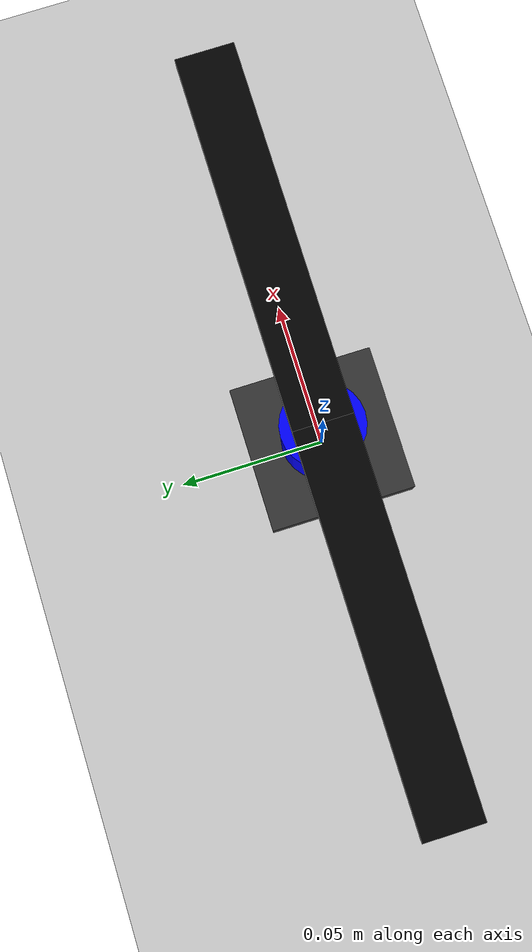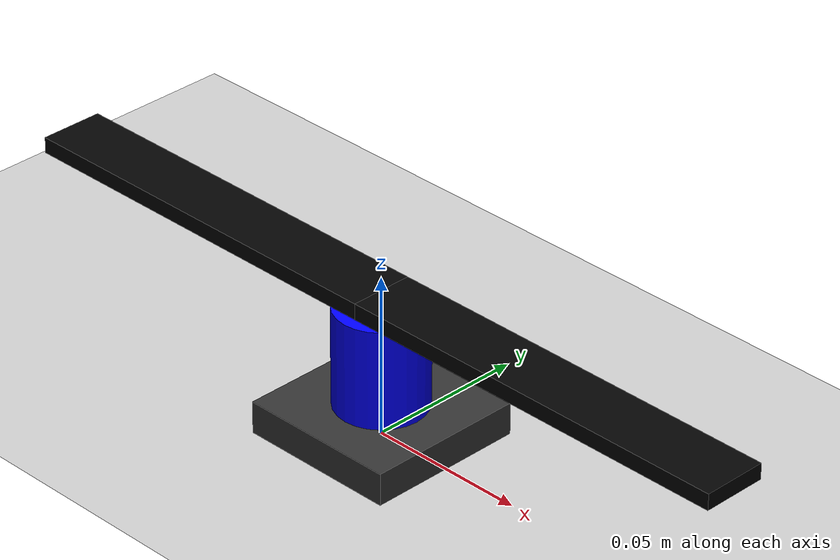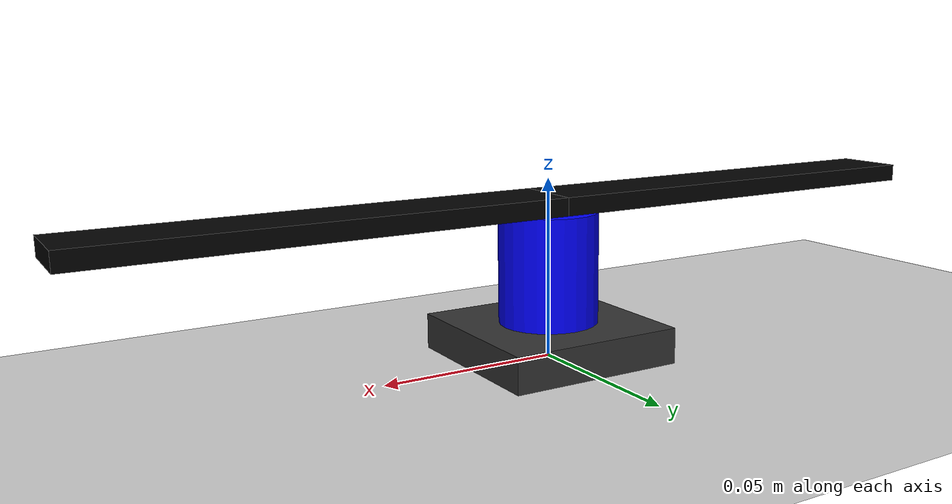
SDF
<?xml version="1.0" ?>
<sdf version="1.10">
  <world name="motor">
    <physics name="1ms" type="ignore">
      <max_step_size>0.001</max_step_size>
      <real_time_factor>1.0</real_time_factor>
    </physics>

    <plugin filename="gz-sim-physics-system"
      name="gz::sim::systems::Physics">
    </plugin>
    <plugin
      filename="gz-sim-sensors-system"
      name="gz::sim::systems::Sensors">
      <render_engine>ogre2</render_engine>
    </plugin>
    <plugin filename="gz-sim-user-commands-system"
      name="gz::sim::systems::UserCommands">
    </plugin>
    <plugin filename="gz-sim-scene-broadcaster-system"
      name="gz::sim::systems::SceneBroadcaster">
    </plugin>
    <plugin filename="gz-sim-imu-system"
      name="gz::sim::systems::Imu">
    </plugin>
    <plugin filename="gz-sim-navsat-system"
      name="gz::sim::systems::NavSat">
    </plugin>
    <plugin name="gz::sim::systems::ForceTorque"
      filename="gz-sim-forcetorque-system">
    </plugin>

    <scene>
      <ambient>1.0 1.0 1.0</ambient>
      <background>0.8 0.8 0.8</background>
      <sky></sky>
    </scene>

    <spherical_coordinates>
      <latitude_deg>-35.363262</latitude_deg>
      <longitude_deg>149.165237</longitude_deg>
      <elevation>584</elevation>
      <heading_deg>0</heading_deg>
      <surface_model>EARTH_WGS84</surface_model>
    </spherical_coordinates>

    <light type="directional" name="sun">
      <cast_shadows>true</cast_shadows>
      <pose>0 0 10 0 0 0</pose>
      <diffuse>0.8 0.8 0.8 1</diffuse>
      <specular>0.8 0.8 0.8 1</specular>
      <attenuation>
        <range>1000</range>
        <constant>0.9</constant>
        <linear>0.01</linear>
        <quadratic>0.001</quadratic>
      </attenuation>
      <direction>-0.5 0.1 -0.9</direction>
    </light>

    <model name="ground_plane">
      <static>true</static>
      <link name="link">
        <collision name="collision">
          <geometry>
            <plane>
              <normal>0 0 1</normal>
              <size>100 100</size>
            </plane>
          </geometry>
          <surface>
            <friction>
              <ode>
                <mu>1000</mu>
                <mu2>1000</mu2>
              </ode>
            </friction>
          </surface>
        </collision>
        <visual name="visual">
          <geometry>
            <plane>
              <normal>0 0 1</normal>
              <size>100 100</size>
            </plane>
          </geometry>
          <material>
            <ambient>0.8 0.8 0.8</ambient>
            <diffuse>0.8 0.8 0.8</diffuse>
            <specular>0.8 0.8 0.8</specular>
          </material>
        </visual>
      </link>
    </model>

    <model name="motor">
      <pose degrees="true">0 0 0.005 0 0 0</pose>
      <link name="base_link">
        <inertial>
          <mass>10.0</mass>
          <inertia>
            <ixx>0.002166667</ixx>
            <ixy>0</ixy>
            <ixz>0</ixz>
            <iyy>0.002166667</iyy>
            <iyz>0</iyz>
            <izz>0.004166667</izz>
          </inertia>
        </inertial>
        <collision name="collision">
          <geometry>
            <box>
              <size>0.05 0.05 0.01</size>
            </box>
          </geometry>
          <surface>
            <friction>
              <ode>
                <mu>1000</mu>
                <mu2>1000</mu2>
              </ode>
            </friction>
          </surface>
        </collision>
        <visual name="visual">
          <geometry>
            <box>
              <size>0.05 0.05 0.01</size>
            </box>
          </geometry>
          <material>
            <ambient>0.2 0.2 0.2</ambient>
            <diffuse>0.2 0.2 0.2</diffuse>
            <specular>0.01 0.01 0.01</specular>
          </material>
        </visual>
      </link>

      <link name="motor_link">
        <pose relative_to="base_link" degrees="true">0 0 0.0205 0 0 0</pose>
        <inertial>
          <mass>0.064</mass>
          <inertia>
            <ixx>8.19449E-06</ixx>
            <ixy>0</ixy>
            <ixz>0</ixz>
            <iyy>8.19449E-06</iyy>
            <iyz>0</iyz>
            <izz>6.13832E-06</izz>
          </inertia>
        </inertial>
        <collision name="collision">
          <geometry>
            <cylinder>
              <length>0.031</length>
              <radius>0.01385</radius>
            </cylinder>
          </geometry>
        </collision>
        <visual name="visual">
          <geometry>
            <cylinder>
              <length>0.031</length>
              <radius>0.01385</radius>
            </cylinder>
          </geometry>
          <material>
            <ambient>0 0 1</ambient>
            <diffuse>0 0 1</diffuse>
            <specular>0.01 0.01 0.01</specular>
          </material>
        </visual>
      </link>
      <joint name="motor_joint" type="revolute">
        <pose degrees="true">0 0 0 0 0 0</pose>
        <parent>base_link</parent>
        <child>motor_link</child>
        <axis>
          <xyz>0 0 1</xyz>
          <limit>
            <lower>-1.0e16</lower>
            <upper>1.0e16</upper>
          </limit>
          <dynamics>
            <!-- damping multiplies angular velocity by (1 - damping) each step -->
            <damping>1.0e-5</damping>

            <!-- friction multiply  -->
          </dynamics>
        </axis>
        <sensor name="force_torque" type="force_torque">
          <update_rate>1000</update_rate>
          <frame>parent</frame>
          <measure_direction>child_to_parent</measure_direction>
        </sensor>
      </joint>

      <link name="blade_1_link">
        <pose relative_to="motor_link" degrees="true">0.0635 0 0.018 0 0 0</pose>
        <inertial>
          <mass>0.0065</mass>
          <inertia>
            <ixx>2.30208E-07</ixx>
            <ixy>0</ixy>
            <ixz>0</ixz>
            <iyy>8.75008E-06</iyy>
            <iyz>0</iyz>
            <izz>8.95321E-06</izz>
          </inertia>
        </inertial>
        <collision name="collision">
          <geometry>
            <box>
              <size>0.127 0.02 0.005</size>
            </box>
          </geometry>
        </collision>
        <visual name="visual">
          <geometry>
            <box>
              <size>0.127 0.02 0.005</size>
            </box>
          </geometry>
          <material>
            <ambient>0.01 0.01 0.01</ambient>
            <diffuse>0.01 0.01 0.01</diffuse>
            <specular>0.01 0.01 0.01</specular>
          </material>
        </visual>
      </link>
      <joint name="blade_1_joint" type="revolute">
        <pose degrees="true">0 0 0 0 0 0</pose>
        <parent>motor_link</parent>
        <child>blade_1_link</child>
        <axis>
          <xyz>1 0 0</xyz>
          <limit>
            <lower>0.17453293</lower>
            <upper>0.17453293</upper>
          </limit>
          <dynamics>
            <damping>0.1</damping>
          </dynamics>
        </axis>
      </joint>

      <link name="blade_2_link">
        <pose relative_to="motor_link" degrees="true">-0.0635 0 0.018 0 0 180</pose>
        <inertial>
          <mass>0.0065</mass>
          <inertia>
            <ixx>2.30208E-07</ixx>
            <ixy>0</ixy>
            <ixz>0</ixz>
            <iyy>8.75008E-06</iyy>
            <iyz>0</iyz>
            <izz>8.95321E-06</izz>
          </inertia>
        </inertial>
        <collision name="collision">
          <geometry>
            <box>
              <size>0.127 0.02 0.005</size>
            </box>
          </geometry>
        </collision>
        <visual name="visual">
          <geometry>
            <box>
              <size>0.127 0.02 0.005</size>
            </box>
          </geometry>
          <material>
            <ambient>0.01 0.01 0.01</ambient>
            <diffuse>0.01 0.01 0.01</diffuse>
            <specular>0.01 0.01 0.01</specular>
          </material>
        </visual>
      </link>
      <joint name="blade_2_joint" type="revolute">
        <pose degrees="true">0 0 0 0 0 0</pose>
        <parent>motor_link</parent>
        <child>blade_2_link</child>
        <axis>
          <xyz>1 0 0</xyz>
          <limit>
            <lower>0.17453293</lower>
            <upper>0.17453293</upper>
          </limit>
          <dynamics>
            <damping>0.1</damping>
          </dynamics>
        </axis>
      </joint>

      <plugin name="gz::sim::systems::JointStatePublisher"
          filename="gz-sim-joint-state-publisher-system">
      </plugin>

      <!--
        T-Motor 2216 920KV as used on a Hexsoon 450
        KV 920 RPM/V = KV 96 rad/s/V
      -->
      <plugin name="MotorPlugin" filename="MotorPlugin">
        <joint_name>motor_joint</joint_name>
        <use_actuator_msg>0</use_actuator_msg>
        <disable_braking>0</disable_braking>
        <topic>/motor_joint/cmd_vel</topic>
        <p_gain>0.01</p_gain>
        <i_gain>0.01</i_gain>
        <d_gain>0</d_gain>
        <i_max>1</i_max>
        <i_min>-1</i_min>
        <cmd_max>5.0</cmd_max>
        <cmd_min>-5.0</cmd_min>
        <voltage_bat>16.0</voltage_bat>
        <speed_constant>96</speed_constant>
        <torque_constant>53</torque_constant>
        <resistance>0.115</resistance>
        <no_load_current>0.8</no_load_current>
      </plugin>

    <!-- lift-drag for ccw prop  NACA 6412 Re 200000-->
    <plugin filename="gz-sim-lift-drag-system"
        name="gz::sim::systems::LiftDrag">
      <a0>0.1000</a0>
      <cla>6.2000</cla>
      <cda>0.0800</cda>
      <cma>0.0000</cma>
      <alpha_stall>0.1710</alpha_stall>
      <cla_stall>-3.0000</cla_stall>
      <cda_stall>0.8000</cda_stall>
      <cma_stall>0.0000</cma_stall>
      <area>0.0013</area>
      <air_density>1.2041</air_density>
      <cp>0.02 0 0</cp>
      <forward>0 1 0</forward>
      <upward>0 0 1</upward>
      <link_name>blade_1_link</link_name>
      <visualize_forces>
        <visualize>1</visualize>
        <update_rate>1000</update_rate>
        <topic>/model/motor/link/blade_1_link/forces/lift_drag</topic>
      </visualize_forces>
    </plugin>
    <plugin filename="gz-sim-lift-drag-system"
        name="gz::sim::systems::LiftDrag">
      <a0>0.1000</a0>
      <cla>6.2000</cla>
      <cda>0.0800</cda>
      <cma>0.0000</cma>
      <alpha_stall>0.1710</alpha_stall>
      <cla_stall>-3.0000</cla_stall>
      <cda_stall>0.8000</cda_stall>
      <cma_stall>0.0000</cma_stall>
      <area>0.0013</area>
      <air_density>1.2041</air_density>
      <cp>0.02 0 0</cp>
      <forward>0 1 0</forward>
      <upward>0 0 1</upward>
      <link_name>blade_2_link</link_name>
      <visualize_forces>
        <visualize>1</visualize>
        <update_rate>1000</update_rate>
        <topic>/model/motor/link/blade_2_link/forces/lift_drag</topic>
      </visualize_forces>
    </plugin>

    </model>

  </world>
</sdf>
